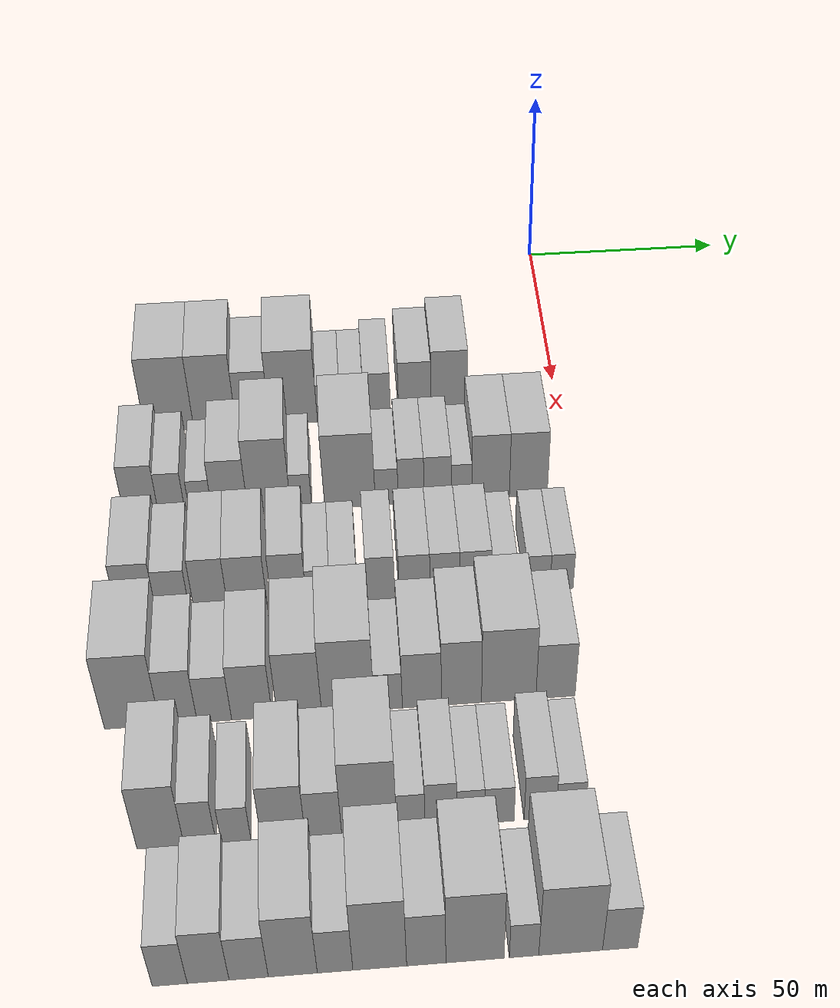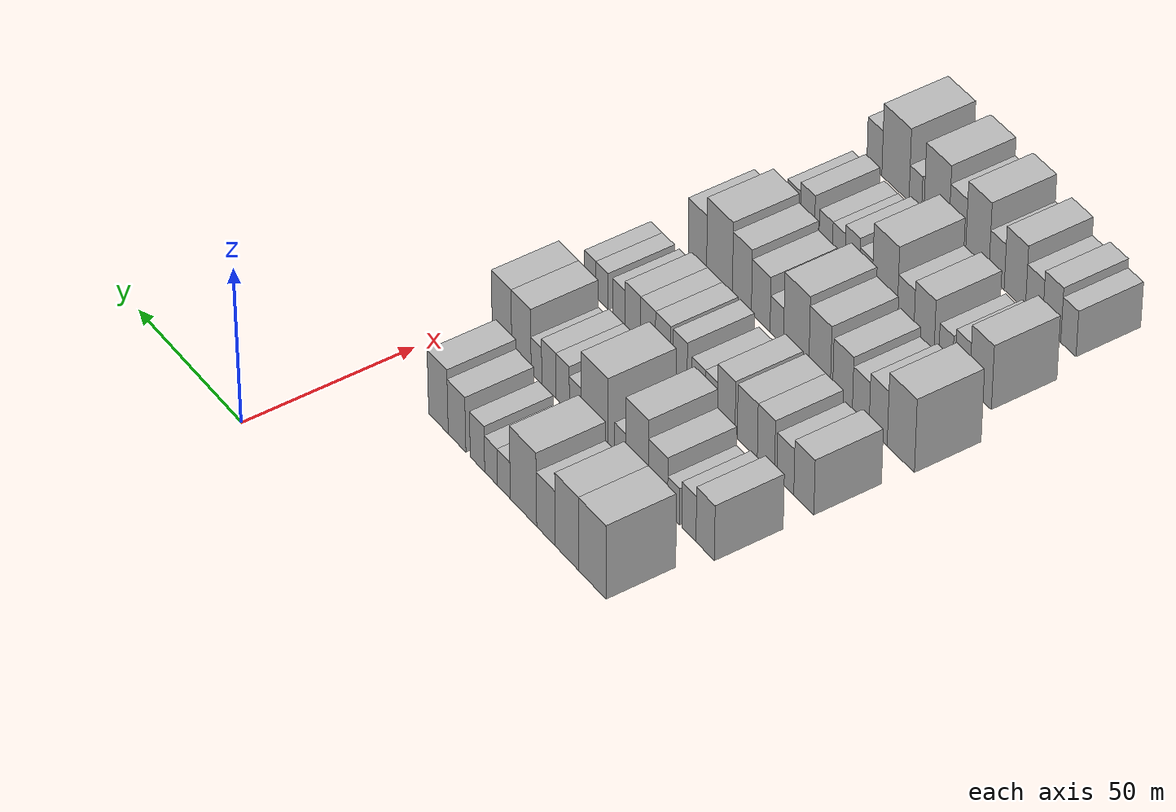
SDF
<sdf version="1.6">
 <world name="default">
  <model name="building_49">
   <static>1</static>
   <pose>50.0000 -95.6654 0 0.000000 0.000000 0.000000</pose>
   <link name="link">
    <pose>0 0 12.00 0 0 0</pose>
    <collision name="collision"><geometry><box><size>20.0000 11.8585 24.0000</size></box></geometry></collision>
    <visual name="visual">
     <cast_shadows>0</cast_shadows>
     <geometry><box><size>20.0000 11.8585 24.0000</size></box></geometry>
     <material>
      <script>
       <uri>model://HANNAS_wall/materials/scripts</uri>
       <uri>model://HANNAS_wall/materials/textures</uri>
       <name>vrc/HANNAS_wall</name>
      </script>
     </material>
    </visual>
   </link>
  </model>
  <model name="building_50">
   <static>1</static>
   <pose>50.0000 -84.5838 0 0.000000 0.000000 0.000000</pose>
   <link name="link">
    <pose>0 0 12.00 0 0 0</pose>
    <collision name="collision"><geometry><box><size>20.0000 10.3048 24.0000</size></box></geometry></collision>
    <visual name="visual">
     <cast_shadows>0</cast_shadows>
     <geometry><box><size>20.0000 10.3048 24.0000</size></box></geometry>
     <material>
      <script>
       <uri>model://HANNAS_wall/materials/scripts</uri>
       <uri>model://HANNAS_wall/materials/textures</uri>
       <name>vrc/HANNAS_wall</name>
      </script>
     </material>
    </visual>
   </link>
  </model>
  <model name="building_51">
   <static>1</static>
   <pose>50.0000 -75.3268 0 0.000000 0.000000 0.000000</pose>
   <link name="link">
    <pose>0 0 9.00 0 0 0</pose>
    <collision name="collision"><geometry><box><size>20.0000 8.2092 18.0000</size></box></geometry></collision>
    <visual name="visual">
     <cast_shadows>0</cast_shadows>
     <geometry><box><size>20.0000 8.2092 18.0000</size></box></geometry>
     <material>
      <script>
       <uri>model://HANNAS_wall/materials/scripts</uri>
       <uri>model://HANNAS_wall/materials/textures</uri>
       <name>vrc/HANNAS_wall</name>
      </script>
     </material>
    </visual>
   </link>
  </model>
  <model name="building_52">
   <static>1</static>
   <pose>50.0000 -65.3656 0 0.000000 0.000000 0.000000</pose>
   <link name="link">
    <pose>0 0 12.00 0 0 0</pose>
    <collision name="collision"><geometry><box><size>20.0000 11.7131 24.0000</size></box></geometry></collision>
    <visual name="visual">
     <cast_shadows>0</cast_shadows>
     <geometry><box><size>20.0000 11.7131 24.0000</size></box></geometry>
     <material>
      <script>
       <uri>model://HANNAS_wall/materials/scripts</uri>
       <uri>model://HANNAS_wall/materials/textures</uri>
       <name>vrc/HANNAS_wall</name>
      </script>
     </material>
    </visual>
   </link>
  </model>
  <model name="building_53">
   <static>1</static>
   <pose>50.0000 -56.6102 0 0.000000 0.000000 0.000000</pose>
   <link name="link">
    <pose>0 0 6.00 0 0 0</pose>
    <collision name="collision"><geometry><box><size>20.0000 5.7977 12.0000</size></box></geometry></collision>
    <visual name="visual">
     <cast_shadows>0</cast_shadows>
     <geometry><box><size>20.0000 5.7977 12.0000</size></box></geometry>
     <material>
      <script>
       <uri>model://HANNAS_wall/materials/scripts</uri>
       <uri>model://HANNAS_wall/materials/textures</uri>
       <name>vrc/HANNAS_wall</name>
      </script>
     </material>
    </visual>
   </link>
  </model>
  <model name="building_54">
   <static>1</static>
   <pose>50.0000 -50.8515 0 0.000000 0.000000 0.000000</pose>
   <link name="link">
    <pose>0 0 6.00 0 0 0</pose>
    <collision name="collision"><geometry><box><size>20.0000 5.7197 12.0000</size></box></geometry></collision>
    <visual name="visual">
     <cast_shadows>0</cast_shadows>
     <geometry><box><size>20.0000 5.7197 12.0000</size></box></geometry>
     <material>
      <script>
       <uri>model://HANNAS_wall/materials/scripts</uri>
       <uri>model://HANNAS_wall/materials/textures</uri>
       <name>vrc/HANNAS_wall</name>
      </script>
     </material>
    </visual>
   </link>
  </model>
  <model name="building_55">
   <static>1</static>
   <pose>50.0000 -44.7287 0 0.000000 0.000000 0.000000</pose>
   <link name="link">
    <pose>0 0 7.50 0 0 0</pose>
    <collision name="collision"><geometry><box><size>20.0000 6.5260 15.0000</size></box></geometry></collision>
    <visual name="visual">
     <cast_shadows>0</cast_shadows>
     <geometry><box><size>20.0000 6.5260 15.0000</size></box></geometry>
     <material>
      <script>
       <uri>model://HANNAS_wall/materials/scripts</uri>
       <uri>model://HANNAS_wall/materials/textures</uri>
       <name>vrc/HANNAS_wall</name>
      </script>
     </material>
    </visual>
   </link>
  </model>
  <model name="building_56">
   <static>1</static>
   <pose>50.0000 -35.4496 0 0.000000 0.000000 0.000000</pose>
   <link name="link">
    <pose>0 0 9.00 0 0 0</pose>
    <collision name="collision"><geometry><box><size>20.0000 8.0321 18.0000</size></box></geometry></collision>
    <visual name="visual">
     <cast_shadows>0</cast_shadows>
     <geometry><box><size>20.0000 8.0321 18.0000</size></box></geometry>
     <material>
      <script>
       <uri>model://HANNAS_wall/materials/scripts</uri>
       <uri>model://HANNAS_wall/materials/textures</uri>
       <name>vrc/HANNAS_wall</name>
      </script>
     </material>
    </visual>
   </link>
  </model>
  <model name="building_57">
   <static>1</static>
   <pose>50.0000 -26.9612 0 0.000000 0.000000 0.000000</pose>
   <link name="link">
    <pose>0 0 10.50 0 0 0</pose>
    <collision name="collision"><geometry><box><size>20.0000 8.9448 21.0000</size></box></geometry></collision>
    <visual name="visual">
     <cast_shadows>0</cast_shadows>
     <geometry><box><size>20.0000 8.9448 21.0000</size></box></geometry>
     <material>
      <script>
       <uri>model://HANNAS_wall/materials/scripts</uri>
       <uri>model://HANNAS_wall/materials/textures</uri>
       <name>vrc/HANNAS_wall</name>
      </script>
     </material>
    </visual>
   </link>
  </model>
  <model name="building_164">
   <static>1</static>
   <pose>79.0000 -100.8927 0 0.000000 0.000000 0.000000</pose>
   <link name="link">
    <pose>0 0 9.00 0 0 0</pose>
    <collision name="collision"><geometry><box><size>20.0000 7.8960 18.0000</size></box></geometry></collision>
    <visual name="visual">
     <cast_shadows>0</cast_shadows>
     <geometry><box><size>20.0000 7.8960 18.0000</size></box></geometry>
     <material>
      <script>
       <uri>model://HANNAS_wall/materials/scripts</uri>
       <uri>model://HANNAS_wall/materials/textures</uri>
       <name>vrc/HANNAS_wall</name>
      </script>
     </material>
    </visual>
   </link>
  </model>
  <model name="building_165">
   <static>1</static>
   <pose>79.0000 -93.8860 0 0.000000 0.000000 0.000000</pose>
   <link name="link">
    <pose>0 0 7.50 0 0 0</pose>
    <collision name="collision"><geometry><box><size>20.0000 6.1174 15.0000</size></box></geometry></collision>
    <visual name="visual">
     <cast_shadows>0</cast_shadows>
     <geometry><box><size>20.0000 6.1174 15.0000</size></box></geometry>
     <material>
      <script>
       <uri>model://HANNAS_wall/materials/scripts</uri>
       <uri>model://HANNAS_wall/materials/textures</uri>
       <name>vrc/HANNAS_wall</name>
      </script>
     </material>
    </visual>
   </link>
  </model>
  <model name="building_166">
   <static>1</static>
   <pose>79.0000 -87.2412 0 0.000000 0.000000 0.000000</pose>
   <link name="link">
    <pose>0 0 6.00 0 0 0</pose>
    <collision name="collision"><geometry><box><size>20.0000 5.1724 12.0000</size></box></geometry></collision>
    <visual name="visual">
     <cast_shadows>0</cast_shadows>
     <geometry><box><size>20.0000 5.1724 12.0000</size></box></geometry>
     <material>
      <script>
       <uri>model://HANNAS_wall/materials/scripts</uri>
       <uri>model://HANNAS_wall/materials/textures</uri>
       <name>vrc/HANNAS_wall</name>
      </script>
     </material>
    </visual>
   </link>
  </model>
  <model name="building_167">
   <static>1</static>
   <pose>79.0000 -80.5341 0 0.000000 0.000000 0.000000</pose>
   <link name="link">
    <pose>0 0 9.00 0 0 0</pose>
    <collision name="collision"><geometry><box><size>20.0000 8.2418 18.0000</size></box></geometry></collision>
    <visual name="visual">
     <cast_shadows>0</cast_shadows>
     <geometry><box><size>20.0000 8.2418 18.0000</size></box></geometry>
     <material>
      <script>
       <uri>model://HANNAS_wall/materials/scripts</uri>
       <uri>model://HANNAS_wall/materials/textures</uri>
       <name>vrc/HANNAS_wall</name>
      </script>
     </material>
    </visual>
   </link>
  </model>
  <model name="building_168">
   <static>1</static>
   <pose>79.0000 -71.4314 0 0.000000 0.000000 0.000000</pose>
   <link name="link">
    <pose>0 0 12.00 0 0 0</pose>
    <collision name="collision"><geometry><box><size>20.0000 9.9634 24.0000</size></box></geometry></collision>
    <visual name="visual">
     <cast_shadows>0</cast_shadows>
     <geometry><box><size>20.0000 9.9634 24.0000</size></box></geometry>
     <material>
      <script>
       <uri>model://HANNAS_wall/materials/scripts</uri>
       <uri>model://HANNAS_wall/materials/textures</uri>
       <name>vrc/HANNAS_wall</name>
      </script>
     </material>
    </visual>
   </link>
  </model>
  <model name="building_169">
   <static>1</static>
   <pose>79.0000 -63.9981 0 0.000000 0.000000 0.000000</pose>
   <link name="link">
    <pose>0 0 6.00 0 0 0</pose>
    <collision name="collision"><geometry><box><size>20.0000 4.9031 12.0000</size></box></geometry></collision>
    <visual name="visual">
     <cast_shadows>0</cast_shadows>
     <geometry><box><size>20.0000 4.9031 12.0000</size></box></geometry>
     <material>
      <script>
       <uri>model://HANNAS_wall/materials/scripts</uri>
       <uri>model://HANNAS_wall/materials/textures</uri>
       <name>vrc/HANNAS_wall</name>
      </script>
     </material>
    </visual>
   </link>
  </model>
  <model name="building_170">
   <static>1</static>
   <pose>79.0000 -52.6302 0 0.000000 0.000000 0.000000</pose>
   <link name="link">
    <pose>0 0 12.00 0 0 0</pose>
    <collision name="collision"><geometry><box><size>20.0000 11.8328 24.0000</size></box></geometry></collision>
    <visual name="visual">
     <cast_shadows>0</cast_shadows>
     <geometry><box><size>20.0000 11.8328 24.0000</size></box></geometry>
     <material>
      <script>
       <uri>model://HANNAS_wall/materials/scripts</uri>
       <uri>model://HANNAS_wall/materials/textures</uri>
       <name>vrc/HANNAS_wall</name>
      </script>
     </material>
    </visual>
   </link>
  </model>
  <model name="building_171">
   <static>1</static>
   <pose>79.0000 -44.0186 0 0.000000 0.000000 0.000000</pose>
   <link name="link">
    <pose>0 0 6.00 0 0 0</pose>
    <collision name="collision"><geometry><box><size>20.0000 5.3902 12.0000</size></box></geometry></collision>
    <visual name="visual">
     <cast_shadows>0</cast_shadows>
     <geometry><box><size>20.0000 5.3902 12.0000</size></box></geometry>
     <material>
      <script>
       <uri>model://HANNAS_wall/materials/scripts</uri>
       <uri>model://HANNAS_wall/materials/textures</uri>
       <name>vrc/HANNAS_wall</name>
      </script>
     </material>
    </visual>
   </link>
  </model>
  <model name="building_172">
   <static>1</static>
   <pose>79.0000 -38.2879 0 0.000000 0.000000 0.000000</pose>
   <link name="link">
    <pose>0 0 7.50 0 0 0</pose>
    <collision name="collision"><geometry><box><size>20.0000 6.0713 15.0000</size></box></geometry></collision>
    <visual name="visual">
     <cast_shadows>0</cast_shadows>
     <geometry><box><size>20.0000 6.0713 15.0000</size></box></geometry>
     <material>
      <script>
       <uri>model://HANNAS_wall/materials/scripts</uri>
       <uri>model://HANNAS_wall/materials/textures</uri>
       <name>vrc/HANNAS_wall</name>
      </script>
     </material>
    </visual>
   </link>
  </model>
  <model name="building_173">
   <static>1</static>
   <pose>79.0000 -32.0637 0 0.000000 0.000000 0.000000</pose>
   <link name="link">
    <pose>0 0 7.50 0 0 0</pose>
    <collision name="collision"><geometry><box><size>20.0000 6.3772 15.0000</size></box></geometry></collision>
    <visual name="visual">
     <cast_shadows>0</cast_shadows>
     <geometry><box><size>20.0000 6.3772 15.0000</size></box></geometry>
     <material>
      <script>
       <uri>model://HANNAS_wall/materials/scripts</uri>
       <uri>model://HANNAS_wall/materials/textures</uri>
       <name>vrc/HANNAS_wall</name>
      </script>
     </material>
    </visual>
   </link>
  </model>
  <model name="building_174">
   <static>1</static>
   <pose>79.0000 -26.4556 0 0.000000 0.000000 0.000000</pose>
   <link name="link">
    <pose>0 0 6.00 0 0 0</pose>
    <collision name="collision"><geometry><box><size>20.0000 4.8388 12.0000</size></box></geometry></collision>
    <visual name="visual">
     <cast_shadows>0</cast_shadows>
     <geometry><box><size>20.0000 4.8388 12.0000</size></box></geometry>
     <material>
      <script>
       <uri>model://HANNAS_wall/materials/scripts</uri>
       <uri>model://HANNAS_wall/materials/textures</uri>
       <name>vrc/HANNAS_wall</name>
      </script>
     </material>
    </visual>
   </link>
  </model>
  <model name="building_175">
   <static>1</static>
   <pose>79.0000 -19.6190 0 0.000000 0.000000 0.000000</pose>
   <link name="link">
    <pose>0 0 10.50 0 0 0</pose>
    <collision name="collision"><geometry><box><size>20.0000 8.8344 21.0000</size></box></geometry></collision>
    <visual name="visual">
     <cast_shadows>0</cast_shadows>
     <geometry><box><size>20.0000 8.8344 21.0000</size></box></geometry>
     <material>
      <script>
       <uri>model://HANNAS_wall/materials/scripts</uri>
       <uri>model://HANNAS_wall/materials/textures</uri>
       <name>vrc/HANNAS_wall</name>
      </script>
     </material>
    </visual>
   </link>
  </model>
  <model name="building_176">
   <static>1</static>
   <pose>79.0000 -10.7137 0 0.000000 0.000000 0.000000</pose>
   <link name="link">
    <pose>0 0 10.50 0 0 0</pose>
    <collision name="collision"><geometry><box><size>20.0000 8.9762 21.0000</size></box></geometry></collision>
    <visual name="visual">
     <cast_shadows>0</cast_shadows>
     <geometry><box><size>20.0000 8.9762 21.0000</size></box></geometry>
     <material>
      <script>
       <uri>model://HANNAS_wall/materials/scripts</uri>
       <uri>model://HANNAS_wall/materials/textures</uri>
       <name>vrc/HANNAS_wall</name>
      </script>
     </material>
    </visual>
   </link>
  </model>
  <model name="building_285">
   <static>1</static>
   <pose>108.0000 -100.5775 0 0.000000 0.000000 0.000000</pose>
   <link name="link">
    <pose>0 0 9.00 0 0 0</pose>
    <collision name="collision"><geometry><box><size>20.0000 8.5226 18.0000</size></box></geometry></collision>
    <visual name="visual">
     <cast_shadows>0</cast_shadows>
     <geometry><box><size>20.0000 8.5226 18.0000</size></box></geometry>
     <material>
      <script>
       <uri>model://HANNAS_wall/materials/scripts</uri>
       <uri>model://HANNAS_wall/materials/textures</uri>
       <name>vrc/HANNAS_wall</name>
      </script>
     </material>
    </visual>
   </link>
  </model>
  <model name="building_286">
   <static>1</static>
   <pose>108.0000 -92.6948 0 0.000000 0.000000 0.000000</pose>
   <link name="link">
    <pose>0 0 7.50 0 0 0</pose>
    <collision name="collision"><geometry><box><size>20.0000 7.2428 15.0000</size></box></geometry></collision>
    <visual name="visual">
     <cast_shadows>0</cast_shadows>
     <geometry><box><size>20.0000 7.2428 15.0000</size></box></geometry>
     <material>
      <script>
       <uri>model://HANNAS_wall/materials/scripts</uri>
       <uri>model://HANNAS_wall/materials/textures</uri>
       <name>vrc/HANNAS_wall</name>
      </script>
     </material>
    </visual>
   </link>
  </model>
  <model name="building_287">
   <static>1</static>
   <pose>108.0000 -84.3746 0 0.000000 0.000000 0.000000</pose>
   <link name="link">
    <pose>0 0 9.00 0 0 0</pose>
    <collision name="collision"><geometry><box><size>20.0000 7.3976 18.0000</size></box></geometry></collision>
    <visual name="visual">
     <cast_shadows>0</cast_shadows>
     <geometry><box><size>20.0000 7.3976 18.0000</size></box></geometry>
     <material>
      <script>
       <uri>model://HANNAS_wall/materials/scripts</uri>
       <uri>model://HANNAS_wall/materials/textures</uri>
       <name>vrc/HANNAS_wall</name>
      </script>
     </material>
    </visual>
   </link>
  </model>
  <model name="building_288">
   <static>1</static>
   <pose>108.0000 -76.3497 0 0.000000 0.000000 0.000000</pose>
   <link name="link">
    <pose>0 0 9.00 0 0 0</pose>
    <collision name="collision"><geometry><box><size>20.0000 8.6523 18.0000</size></box></geometry></collision>
    <visual name="visual">
     <cast_shadows>0</cast_shadows>
     <geometry><box><size>20.0000 8.6523 18.0000</size></box></geometry>
     <material>
      <script>
       <uri>model://HANNAS_wall/materials/scripts</uri>
       <uri>model://HANNAS_wall/materials/textures</uri>
       <name>vrc/HANNAS_wall</name>
      </script>
     </material>
    </visual>
   </link>
  </model>
  <model name="building_289">
   <static>1</static>
   <pose>108.0000 -67.1821 0 0.000000 0.000000 0.000000</pose>
   <link name="link">
    <pose>0 0 9.00 0 0 0</pose>
    <collision name="collision"><geometry><box><size>20.0000 7.6829 18.0000</size></box></geometry></collision>
    <visual name="visual">
     <cast_shadows>0</cast_shadows>
     <geometry><box><size>20.0000 7.6829 18.0000</size></box></geometry>
     <material>
      <script>
       <uri>model://HANNAS_wall/materials/scripts</uri>
       <uri>model://HANNAS_wall/materials/textures</uri>
       <name>vrc/HANNAS_wall</name>
      </script>
     </material>
    </visual>
   </link>
  </model>
  <model name="building_290">
   <static>1</static>
   <pose>108.0000 -60.6601 0 0.000000 0.000000 0.000000</pose>
   <link name="link">
    <pose>0 0 6.00 0 0 0</pose>
    <collision name="collision"><geometry><box><size>20.0000 5.3612 12.0000</size></box></geometry></collision>
    <visual name="visual">
     <cast_shadows>0</cast_shadows>
     <geometry><box><size>20.0000 5.3612 12.0000</size></box></geometry>
     <material>
      <script>
       <uri>model://HANNAS_wall/materials/scripts</uri>
       <uri>model://HANNAS_wall/materials/textures</uri>
       <name>vrc/HANNAS_wall</name>
      </script>
     </material>
    </visual>
   </link>
  </model>
  <model name="building_291">
   <static>1</static>
   <pose>108.0000 -55.0084 0 0.000000 0.000000 0.000000</pose>
   <link name="link">
    <pose>0 0 6.00 0 0 0</pose>
    <collision name="collision"><geometry><box><size>20.0000 5.9421 12.0000</size></box></geometry></collision>
    <visual name="visual">
     <cast_shadows>0</cast_shadows>
     <geometry><box><size>20.0000 5.9421 12.0000</size></box></geometry>
     <material>
      <script>
       <uri>model://HANNAS_wall/materials/scripts</uri>
       <uri>model://HANNAS_wall/materials/textures</uri>
       <name>vrc/HANNAS_wall</name>
      </script>
     </material>
    </visual>
   </link>
  </model>
  <model name="building_292">
   <static>1</static>
   <pose>108.0000 -46.9216 0 0.000000 0.000000 0.000000</pose>
   <link name="link">
    <pose>0 0 7.50 0 0 0</pose>
    <collision name="collision"><geometry><box><size>20.0000 6.2316 15.0000</size></box></geometry></collision>
    <visual name="visual">
     <cast_shadows>0</cast_shadows>
     <geometry><box><size>20.0000 6.2316 15.0000</size></box></geometry>
     <material>
      <script>
       <uri>model://HANNAS_wall/materials/scripts</uri>
       <uri>model://HANNAS_wall/materials/textures</uri>
       <name>vrc/HANNAS_wall</name>
      </script>
     </material>
    </visual>
   </link>
  </model>
  <model name="building_293">
   <static>1</static>
   <pose>108.0000 -39.3901 0 0.000000 0.000000 0.000000</pose>
   <link name="link">
    <pose>0 0 7.50 0 0 0</pose>
    <collision name="collision"><geometry><box><size>20.0000 6.8315 15.0000</size></box></geometry></collision>
    <visual name="visual">
     <cast_shadows>0</cast_shadows>
     <geometry><box><size>20.0000 6.8315 15.0000</size></box></geometry>
     <material>
      <script>
       <uri>model://HANNAS_wall/materials/scripts</uri>
       <uri>model://HANNAS_wall/materials/textures</uri>
       <name>vrc/HANNAS_wall</name>
      </script>
     </material>
    </visual>
   </link>
  </model>
  <model name="building_294">
   <static>1</static>
   <pose>108.0000 -32.6646 0 0.000000 0.000000 0.000000</pose>
   <link name="link">
    <pose>0 0 7.50 0 0 0</pose>
    <collision name="collision"><geometry><box><size>20.0000 6.6195 15.0000</size></box></geometry></collision>
    <visual name="visual">
     <cast_shadows>0</cast_shadows>
     <geometry><box><size>20.0000 6.6195 15.0000</size></box></geometry>
     <material>
      <script>
       <uri>model://HANNAS_wall/materials/scripts</uri>
       <uri>model://HANNAS_wall/materials/textures</uri>
       <name>vrc/HANNAS_wall</name>
      </script>
     </material>
    </visual>
   </link>
  </model>
  <model name="building_295">
   <static>1</static>
   <pose>108.0000 -25.8540 0 0.000000 0.000000 0.000000</pose>
   <link name="link">
    <pose>0 0 7.50 0 0 0</pose>
    <collision name="collision"><geometry><box><size>20.0000 7.0016 15.0000</size></box></geometry></collision>
    <visual name="visual">
     <cast_shadows>0</cast_shadows>
     <geometry><box><size>20.0000 7.0016 15.0000</size></box></geometry>
     <material>
      <script>
       <uri>model://HANNAS_wall/materials/scripts</uri>
       <uri>model://HANNAS_wall/materials/textures</uri>
       <name>vrc/HANNAS_wall</name>
      </script>
     </material>
    </visual>
   </link>
  </model>
  <model name="building_296">
   <static>1</static>
   <pose>108.0000 -19.5344 0 0.000000 0.000000 0.000000</pose>
   <link name="link">
    <pose>0 0 6.00 0 0 0</pose>
    <collision name="collision"><geometry><box><size>20.0000 5.6376 12.0000</size></box></geometry></collision>
    <visual name="visual">
     <cast_shadows>0</cast_shadows>
     <geometry><box><size>20.0000 5.6376 12.0000</size></box></geometry>
     <material>
      <script>
       <uri>model://HANNAS_wall/materials/scripts</uri>
       <uri>model://HANNAS_wall/materials/textures</uri>
       <name>vrc/HANNAS_wall</name>
      </script>
     </material>
    </visual>
   </link>
  </model>
  <model name="building_297">
   <static>1</static>
   <pose>108.0000 -11.9482 0 0.000000 0.000000 0.000000</pose>
   <link name="link">
    <pose>0 0 6.00 0 0 0</pose>
    <collision name="collision"><geometry><box><size>20.0000 5.5349 12.0000</size></box></geometry></collision>
    <visual name="visual">
     <cast_shadows>0</cast_shadows>
     <geometry><box><size>20.0000 5.5349 12.0000</size></box></geometry>
     <material>
      <script>
       <uri>model://HANNAS_wall/materials/scripts</uri>
       <uri>model://HANNAS_wall/materials/textures</uri>
       <name>vrc/HANNAS_wall</name>
      </script>
     </material>
    </visual>
   </link>
  </model>
  <model name="building_298">
   <static>1</static>
   <pose>108.0000 -6.5857 0 0.000000 0.000000 0.000000</pose>
   <link name="link">
    <pose>0 0 6.00 0 0 0</pose>
    <collision name="collision"><geometry><box><size>20.0000 5.1899 12.0000</size></box></geometry></collision>
    <visual name="visual">
     <cast_shadows>0</cast_shadows>
     <geometry><box><size>20.0000 5.1899 12.0000</size></box></geometry>
     <material>
      <script>
       <uri>model://HANNAS_wall/materials/scripts</uri>
       <uri>model://HANNAS_wall/materials/textures</uri>
       <name>vrc/HANNAS_wall</name>
      </script>
     </material>
    </visual>
   </link>
  </model>
  <model name="building_401">
   <static>1</static>
   <pose>137.0000 -100.2465 0 0.000000 0.000000 0.000000</pose>
   <link name="link">
    <pose>0 0 12.00 0 0 0</pose>
    <collision name="collision"><geometry><box><size>20.0000 11.4890 24.0000</size></box></geometry></collision>
    <visual name="visual">
     <cast_shadows>0</cast_shadows>
     <geometry><box><size>20.0000 11.4890 24.0000</size></box></geometry>
     <material>
      <script>
       <uri>model://HANNAS_wall/materials/scripts</uri>
       <uri>model://HANNAS_wall/materials/textures</uri>
       <name>vrc/HANNAS_wall</name>
      </script>
     </material>
    </visual>
   </link>
  </model>
  <model name="building_402">
   <static>1</static>
   <pose>137.0000 -90.6648 0 0.000000 0.000000 0.000000</pose>
   <link name="link">
    <pose>0 0 9.00 0 0 0</pose>
    <collision name="collision"><geometry><box><size>20.0000 7.6744 18.0000</size></box></geometry></collision>
    <visual name="visual">
     <cast_shadows>0</cast_shadows>
     <geometry><box><size>20.0000 7.6744 18.0000</size></box></geometry>
     <material>
      <script>
       <uri>model://HANNAS_wall/materials/scripts</uri>
       <uri>model://HANNAS_wall/materials/textures</uri>
       <name>vrc/HANNAS_wall</name>
      </script>
     </material>
    </visual>
   </link>
  </model>
  <model name="building_403">
   <static>1</static>
   <pose>137.0000 -83.2511 0 0.000000 0.000000 0.000000</pose>
   <link name="link">
    <pose>0 0 7.50 0 0 0</pose>
    <collision name="collision"><geometry><box><size>20.0000 7.1529 15.0000</size></box></geometry></collision>
    <visual name="visual">
     <cast_shadows>0</cast_shadows>
     <geometry><box><size>20.0000 7.1529 15.0000</size></box></geometry>
     <material>
      <script>
       <uri>model://HANNAS_wall/materials/scripts</uri>
       <uri>model://HANNAS_wall/materials/textures</uri>
       <name>vrc/HANNAS_wall</name>
      </script>
     </material>
    </visual>
   </link>
  </model>
  <model name="building_404">
   <static>1</static>
   <pose>137.0000 -75.4385 0 0.000000 0.000000 0.000000</pose>
   <link name="link">
    <pose>0 0 9.00 0 0 0</pose>
    <collision name="collision"><geometry><box><size>20.0000 8.4724 18.0000</size></box></geometry></collision>
    <visual name="visual">
     <cast_shadows>0</cast_shadows>
     <geometry><box><size>20.0000 8.4724 18.0000</size></box></geometry>
     <material>
      <script>
       <uri>model://HANNAS_wall/materials/scripts</uri>
       <uri>model://HANNAS_wall/materials/textures</uri>
       <name>vrc/HANNAS_wall</name>
      </script>
     </material>
    </visual>
   </link>
  </model>
  <model name="building_405">
   <static>1</static>
   <pose>137.0000 -65.5525 0 0.000000 0.000000 0.000000</pose>
   <link name="link">
    <pose>0 0 10.50 0 0 0</pose>
    <collision name="collision"><geometry><box><size>20.0000 9.2996 21.0000</size></box></geometry></collision>
    <visual name="visual">
     <cast_shadows>0</cast_shadows>
     <geometry><box><size>20.0000 9.2996 21.0000</size></box></geometry>
     <material>
      <script>
       <uri>model://HANNAS_wall/materials/scripts</uri>
       <uri>model://HANNAS_wall/materials/textures</uri>
       <name>vrc/HANNAS_wall</name>
      </script>
     </material>
    </visual>
   </link>
  </model>
  <model name="building_406">
   <static>1</static>
   <pose>137.0000 -55.3952 0 0.000000 0.000000 0.000000</pose>
   <link name="link">
    <pose>0 0 12.00 0 0 0</pose>
    <collision name="collision"><geometry><box><size>20.0000 11.0149 24.0000</size></box></geometry></collision>
    <visual name="visual">
     <cast_shadows>0</cast_shadows>
     <geometry><box><size>20.0000 11.0149 24.0000</size></box></geometry>
     <material>
      <script>
       <uri>model://HANNAS_wall/materials/scripts</uri>
       <uri>model://HANNAS_wall/materials/textures</uri>
       <name>vrc/HANNAS_wall</name>
      </script>
     </material>
    </visual>
   </link>
  </model>
  <model name="building_407">
   <static>1</static>
   <pose>137.0000 -46.9393 0 0.000000 0.000000 0.000000</pose>
   <link name="link">
    <pose>0 0 6.00 0 0 0</pose>
    <collision name="collision"><geometry><box><size>20.0000 5.8969 12.0000</size></box></geometry></collision>
    <visual name="visual">
     <cast_shadows>0</cast_shadows>
     <geometry><box><size>20.0000 5.8969 12.0000</size></box></geometry>
     <material>
      <script>
       <uri>model://HANNAS_wall/materials/scripts</uri>
       <uri>model://HANNAS_wall/materials/textures</uri>
       <name>vrc/HANNAS_wall</name>
      </script>
     </material>
    </visual>
   </link>
  </model>
  <model name="building_408">
   <static>1</static>
   <pose>137.0000 -39.8700 0 0.000000 0.000000 0.000000</pose>
   <link name="link">
    <pose>0 0 9.00 0 0 0</pose>
    <collision name="collision"><geometry><box><size>20.0000 8.2418 18.0000</size></box></geometry></collision>
    <visual name="visual">
     <cast_shadows>0</cast_shadows>
     <geometry><box><size>20.0000 8.2418 18.0000</size></box></geometry>
     <material>
      <script>
       <uri>model://HANNAS_wall/materials/scripts</uri>
       <uri>model://HANNAS_wall/materials/textures</uri>
       <name>vrc/HANNAS_wall</name>
      </script>
     </material>
    </visual>
   </link>
  </model>
  <model name="building_409">
   <static>1</static>
   <pose>137.0000 -31.5359 0 0.000000 0.000000 0.000000</pose>
   <link name="link">
    <pose>0 0 10.50 0 0 0</pose>
    <collision name="collision"><geometry><box><size>20.0000 8.4264 21.0000</size></box></geometry></collision>
    <visual name="visual">
     <cast_shadows>0</cast_shadows>
     <geometry><box><size>20.0000 8.4264 21.0000</size></box></geometry>
     <material>
      <script>
       <uri>model://HANNAS_wall/materials/scripts</uri>
       <uri>model://HANNAS_wall/materials/textures</uri>
       <name>vrc/HANNAS_wall</name>
      </script>
     </material>
    </visual>
   </link>
  </model>
  <model name="building_410">
   <static>1</static>
   <pose>137.0000 -21.5633 0 0.000000 0.000000 0.000000</pose>
   <link name="link">
    <pose>0 0 12.00 0 0 0</pose>
    <collision name="collision"><geometry><box><size>20.0000 11.5189 24.0000</size></box></geometry></collision>
    <visual name="visual">
     <cast_shadows>0</cast_shadows>
     <geometry><box><size>20.0000 11.5189 24.0000</size></box></geometry>
     <material>
      <script>
       <uri>model://HANNAS_wall/materials/scripts</uri>
       <uri>model://HANNAS_wall/materials/textures</uri>
       <name>vrc/HANNAS_wall</name>
      </script>
     </material>
    </visual>
   </link>
  </model>
  <model name="building_411">
   <static>1</static>
   <pose>137.0000 -11.6373 0 0.000000 0.000000 0.000000</pose>
   <link name="link">
    <pose>0 0 9.00 0 0 0</pose>
    <collision name="collision"><geometry><box><size>20.0000 8.3332 18.0000</size></box></geometry></collision>
    <visual name="visual">
     <cast_shadows>0</cast_shadows>
     <geometry><box><size>20.0000 8.3332 18.0000</size></box></geometry>
     <material>
      <script>
       <uri>model://HANNAS_wall/materials/scripts</uri>
       <uri>model://HANNAS_wall/materials/textures</uri>
       <name>vrc/HANNAS_wall</name>
      </script>
     </material>
    </visual>
   </link>
  </model>
  <model name="building_517">
   <static>1</static>
   <pose>166.0000 -93.2825 0 0.000000 0.000000 0.000000</pose>
   <link name="link">
    <pose>0 0 10.50 0 0 0</pose>
    <collision name="collision"><geometry><box><size>20.0000 9.1775 21.0000</size></box></geometry></collision>
    <visual name="visual">
     <cast_shadows>0</cast_shadows>
     <geometry><box><size>20.0000 9.1775 21.0000</size></box></geometry>
     <material>
      <script>
       <uri>model://HANNAS_wall/materials/scripts</uri>
       <uri>model://HANNAS_wall/materials/textures</uri>
       <name>vrc/HANNAS_wall</name>
      </script>
     </material>
    </visual>
   </link>
  </model>
  <model name="building_518">
   <static>1</static>
   <pose>166.0000 -85.5630 0 0.000000 0.000000 0.000000</pose>
   <link name="link">
    <pose>0 0 7.50 0 0 0</pose>
    <collision name="collision"><geometry><box><size>20.0000 6.2615 15.0000</size></box></geometry></collision>
    <visual name="visual">
     <cast_shadows>0</cast_shadows>
     <geometry><box><size>20.0000 6.2615 15.0000</size></box></geometry>
     <material>
      <script>
       <uri>model://HANNAS_wall/materials/scripts</uri>
       <uri>model://HANNAS_wall/materials/textures</uri>
       <name>vrc/HANNAS_wall</name>
      </script>
     </material>
    </visual>
   </link>
  </model>
  <model name="building_519">
   <static>1</static>
   <pose>166.0000 -78.5292 0 0.000000 0.000000 0.000000</pose>
   <link name="link">
    <pose>0 0 6.00 0 0 0</pose>
    <collision name="collision"><geometry><box><size>20.0000 5.8061 12.0000</size></box></geometry></collision>
    <visual name="visual">
     <cast_shadows>0</cast_shadows>
     <geometry><box><size>20.0000 5.8061 12.0000</size></box></geometry>
     <material>
      <script>
       <uri>model://HANNAS_wall/materials/scripts</uri>
       <uri>model://HANNAS_wall/materials/textures</uri>
       <name>vrc/HANNAS_wall</name>
      </script>
     </material>
    </visual>
   </link>
  </model>
  <model name="building_520">
   <static>1</static>
   <pose>166.0000 -69.2948 0 0.000000 0.000000 0.000000</pose>
   <link name="link">
    <pose>0 0 9.00 0 0 0</pose>
    <collision name="collision"><geometry><box><size>20.0000 8.6627 18.0000</size></box></geometry></collision>
    <visual name="visual">
     <cast_shadows>0</cast_shadows>
     <geometry><box><size>20.0000 8.6627 18.0000</size></box></geometry>
     <material>
      <script>
       <uri>model://HANNAS_wall/materials/scripts</uri>
       <uri>model://HANNAS_wall/materials/textures</uri>
       <name>vrc/HANNAS_wall</name>
      </script>
     </material>
    </visual>
   </link>
  </model>
  <model name="building_521">
   <static>1</static>
   <pose>166.0000 -61.3845 0 0.000000 0.000000 0.000000</pose>
   <link name="link">
    <pose>0 0 7.50 0 0 0</pose>
    <collision name="collision"><geometry><box><size>20.0000 7.1581 15.0000</size></box></geometry></collision>
    <visual name="visual">
     <cast_shadows>0</cast_shadows>
     <geometry><box><size>20.0000 7.1581 15.0000</size></box></geometry>
     <material>
      <script>
       <uri>model://HANNAS_wall/materials/scripts</uri>
       <uri>model://HANNAS_wall/materials/textures</uri>
       <name>vrc/HANNAS_wall</name>
      </script>
     </material>
    </visual>
   </link>
  </model>
  <model name="building_522">
   <static>1</static>
   <pose>166.0000 -52.3577 0 0.000000 0.000000 0.000000</pose>
   <link name="link">
    <pose>0 0 12.00 0 0 0</pose>
    <collision name="collision"><geometry><box><size>20.0000 10.8954 24.0000</size></box></geometry></collision>
    <visual name="visual">
     <cast_shadows>0</cast_shadows>
     <geometry><box><size>20.0000 10.8954 24.0000</size></box></geometry>
     <material>
      <script>
       <uri>model://HANNAS_wall/materials/scripts</uri>
       <uri>model://HANNAS_wall/materials/textures</uri>
       <name>vrc/HANNAS_wall</name>
      </script>
     </material>
    </visual>
   </link>
  </model>
  <model name="building_523">
   <static>1</static>
   <pose>166.0000 -44.1077 0 0.000000 0.000000 0.000000</pose>
   <link name="link">
    <pose>0 0 6.00 0 0 0</pose>
    <collision name="collision"><geometry><box><size>20.0000 5.6047 12.0000</size></box></geometry></collision>
    <visual name="visual">
     <cast_shadows>0</cast_shadows>
     <geometry><box><size>20.0000 5.6047 12.0000</size></box></geometry>
     <material>
      <script>
       <uri>model://HANNAS_wall/materials/scripts</uri>
       <uri>model://HANNAS_wall/materials/textures</uri>
       <name>vrc/HANNAS_wall</name>
      </script>
     </material>
    </visual>
   </link>
  </model>
  <model name="building_524">
   <static>1</static>
   <pose>166.0000 -38.1775 0 0.000000 0.000000 0.000000</pose>
   <link name="link">
    <pose>0 0 7.50 0 0 0</pose>
    <collision name="collision"><geometry><box><size>20.0000 6.2556 15.0000</size></box></geometry></collision>
    <visual name="visual">
     <cast_shadows>0</cast_shadows>
     <geometry><box><size>20.0000 6.2556 15.0000</size></box></geometry>
     <material>
      <script>
       <uri>model://HANNAS_wall/materials/scripts</uri>
       <uri>model://HANNAS_wall/materials/textures</uri>
       <name>vrc/HANNAS_wall</name>
      </script>
     </material>
    </visual>
   </link>
  </model>
  <model name="building_525">
   <static>1</static>
   <pose>166.0000 -32.2824 0 0.000000 0.000000 0.000000</pose>
   <link name="link">
    <pose>0 0 6.00 0 0 0</pose>
    <collision name="collision"><geometry><box><size>20.0000 5.5348 12.0000</size></box></geometry></collision>
    <visual name="visual">
     <cast_shadows>0</cast_shadows>
     <geometry><box><size>20.0000 5.5348 12.0000</size></box></geometry>
     <material>
      <script>
       <uri>model://HANNAS_wall/materials/scripts</uri>
       <uri>model://HANNAS_wall/materials/textures</uri>
       <name>vrc/HANNAS_wall</name>
      </script>
     </material>
    </visual>
   </link>
  </model>
  <model name="building_526">
   <static>1</static>
   <pose>166.0000 -26.5573 0 0.000000 0.000000 0.000000</pose>
   <link name="link">
    <pose>0 0 6.00 0 0 0</pose>
    <collision name="collision"><geometry><box><size>20.0000 5.9154 12.0000</size></box></geometry></collision>
    <visual name="visual">
     <cast_shadows>0</cast_shadows>
     <geometry><box><size>20.0000 5.9154 12.0000</size></box></geometry>
     <material>
      <script>
       <uri>model://HANNAS_wall/materials/scripts</uri>
       <uri>model://HANNAS_wall/materials/textures</uri>
       <name>vrc/HANNAS_wall</name>
      </script>
     </material>
    </visual>
   </link>
  </model>
  <model name="building_527">
   <static>1</static>
   <pose>166.0000 -18.4351 0 0.000000 0.000000 0.000000</pose>
   <link name="link">
    <pose>0 0 7.50 0 0 0</pose>
    <collision name="collision"><geometry><box><size>20.0000 6.3290 15.0000</size></box></geometry></collision>
    <visual name="visual">
     <cast_shadows>0</cast_shadows>
     <geometry><box><size>20.0000 6.3290 15.0000</size></box></geometry>
     <material>
      <script>
       <uri>model://HANNAS_wall/materials/scripts</uri>
       <uri>model://HANNAS_wall/materials/textures</uri>
       <name>vrc/HANNAS_wall</name>
      </script>
     </material>
    </visual>
   </link>
  </model>
  <model name="building_528">
   <static>1</static>
   <pose>166.0000 -12.3511 0 0.000000 0.000000 0.000000</pose>
   <link name="link">
    <pose>0 0 6.00 0 0 0</pose>
    <collision name="collision"><geometry><box><size>20.0000 5.8389 12.0000</size></box></geometry></collision>
    <visual name="visual">
     <cast_shadows>0</cast_shadows>
     <geometry><box><size>20.0000 5.8389 12.0000</size></box></geometry>
     <material>
      <script>
       <uri>model://HANNAS_wall/materials/scripts</uri>
       <uri>model://HANNAS_wall/materials/textures</uri>
       <name>vrc/HANNAS_wall</name>
      </script>
     </material>
    </visual>
   </link>
  </model>
  <model name="building_630">
   <static>1</static>
   <pose>195.0000 -90.4744 0 0.000000 0.000000 0.000000</pose>
   <link name="link">
    <pose>0 0 7.50 0 0 0</pose>
    <collision name="collision"><geometry><box><size>20.0000 6.4129 15.0000</size></box></geometry></collision>
    <visual name="visual">
     <cast_shadows>0</cast_shadows>
     <geometry><box><size>20.0000 6.4129 15.0000</size></box></geometry>
     <material>
      <script>
       <uri>model://HANNAS_wall/materials/scripts</uri>
       <uri>model://HANNAS_wall/materials/textures</uri>
       <name>vrc/HANNAS_wall</name>
      </script>
     </material>
    </visual>
   </link>
  </model>
  <model name="building_631">
   <static>1</static>
   <pose>195.0000 -83.4363 0 0.000000 0.000000 0.000000</pose>
   <link name="link">
    <pose>0 0 9.00 0 0 0</pose>
    <collision name="collision"><geometry><box><size>20.0000 7.6633 18.0000</size></box></geometry></collision>
    <visual name="visual">
     <cast_shadows>0</cast_shadows>
     <geometry><box><size>20.0000 7.6633 18.0000</size></box></geometry>
     <material>
      <script>
       <uri>model://HANNAS_wall/materials/scripts</uri>
       <uri>model://HANNAS_wall/materials/textures</uri>
       <name>vrc/HANNAS_wall</name>
      </script>
     </material>
    </visual>
   </link>
  </model>
  <model name="building_632">
   <static>1</static>
   <pose>195.0000 -75.9955 0 0.000000 0.000000 0.000000</pose>
   <link name="link">
    <pose>0 0 7.50 0 0 0</pose>
    <collision name="collision"><geometry><box><size>20.0000 7.2184 15.0000</size></box></geometry></collision>
    <visual name="visual">
     <cast_shadows>0</cast_shadows>
     <geometry><box><size>20.0000 7.2184 15.0000</size></box></geometry>
     <material>
      <script>
       <uri>model://HANNAS_wall/materials/scripts</uri>
       <uri>model://HANNAS_wall/materials/textures</uri>
       <name>vrc/HANNAS_wall</name>
      </script>
     </material>
    </visual>
   </link>
  </model>
  <model name="building_633">
   <static>1</static>
   <pose>195.0000 -67.8691 0 0.000000 0.000000 0.000000</pose>
   <link name="link">
    <pose>0 0 10.50 0 0 0</pose>
    <collision name="collision"><geometry><box><size>20.0000 9.0343 21.0000</size></box></geometry></collision>
    <visual name="visual">
     <cast_shadows>0</cast_shadows>
     <geometry><box><size>20.0000 9.0343 21.0000</size></box></geometry>
     <material>
      <script>
       <uri>model://HANNAS_wall/materials/scripts</uri>
       <uri>model://HANNAS_wall/materials/textures</uri>
       <name>vrc/HANNAS_wall</name>
      </script>
     </material>
    </visual>
   </link>
  </model>
  <model name="building_634">
   <static>1</static>
   <pose>195.0000 -60.0723 0 0.000000 0.000000 0.000000</pose>
   <link name="link">
    <pose>0 0 7.50 0 0 0</pose>
    <collision name="collision"><geometry><box><size>20.0000 6.5593 15.0000</size></box></geometry></collision>
    <visual name="visual">
     <cast_shadows>0</cast_shadows>
     <geometry><box><size>20.0000 6.5593 15.0000</size></box></geometry>
     <material>
      <script>
       <uri>model://HANNAS_wall/materials/scripts</uri>
       <uri>model://HANNAS_wall/materials/textures</uri>
       <name>vrc/HANNAS_wall</name>
      </script>
     </material>
    </visual>
   </link>
  </model>
  <model name="building_635">
   <static>1</static>
   <pose>195.0000 -51.7958 0 0.000000 0.000000 0.000000</pose>
   <link name="link">
    <pose>0 0 12.00 0 0 0</pose>
    <collision name="collision"><geometry><box><size>20.0000 9.9938 24.0000</size></box></geometry></collision>
    <visual name="visual">
     <cast_shadows>0</cast_shadows>
     <geometry><box><size>20.0000 9.9938 24.0000</size></box></geometry>
     <material>
      <script>
       <uri>model://HANNAS_wall/materials/scripts</uri>
       <uri>model://HANNAS_wall/materials/textures</uri>
       <name>vrc/HANNAS_wall</name>
      </script>
     </material>
    </visual>
   </link>
  </model>
  <model name="building_636">
   <static>1</static>
   <pose>195.0000 -43.1560 0 0.000000 0.000000 0.000000</pose>
   <link name="link">
    <pose>0 0 9.00 0 0 0</pose>
    <collision name="collision"><geometry><box><size>20.0000 7.2858 18.0000</size></box></geometry></collision>
    <visual name="visual">
     <cast_shadows>0</cast_shadows>
     <geometry><box><size>20.0000 7.2858 18.0000</size></box></geometry>
     <material>
      <script>
       <uri>model://HANNAS_wall/materials/scripts</uri>
       <uri>model://HANNAS_wall/materials/textures</uri>
       <name>vrc/HANNAS_wall</name>
      </script>
     </material>
    </visual>
   </link>
  </model>
  <model name="building_637">
   <static>1</static>
   <pose>195.0000 -34.0834 0 0.000000 0.000000 0.000000</pose>
   <link name="link">
    <pose>0 0 12.00 0 0 0</pose>
    <collision name="collision"><geometry><box><size>20.0000 10.8593 24.0000</size></box></geometry></collision>
    <visual name="visual">
     <cast_shadows>0</cast_shadows>
     <geometry><box><size>20.0000 10.8593 24.0000</size></box></geometry>
     <material>
      <script>
       <uri>model://HANNAS_wall/materials/scripts</uri>
       <uri>model://HANNAS_wall/materials/textures</uri>
       <name>vrc/HANNAS_wall</name>
      </script>
     </material>
    </visual>
   </link>
  </model>
  <model name="building_638">
   <static>1</static>
   <pose>195.0000 -24.9024 0 0.000000 0.000000 0.000000</pose>
   <link name="link">
    <pose>0 0 6.00 0 0 0</pose>
    <collision name="collision"><geometry><box><size>20.0000 5.5027 12.0000</size></box></geometry></collision>
    <visual name="visual">
     <cast_shadows>0</cast_shadows>
     <geometry><box><size>20.0000 5.5027 12.0000</size></box></geometry>
     <material>
      <script>
       <uri>model://HANNAS_wall/materials/scripts</uri>
       <uri>model://HANNAS_wall/materials/textures</uri>
       <name>vrc/HANNAS_wall</name>
      </script>
     </material>
    </visual>
   </link>
  </model>
  <model name="building_639">
   <static>1</static>
   <pose>195.0000 -16.1574 0 0.000000 0.000000 0.000000</pose>
   <link name="link">
    <pose>0 0 12.00 0 0 0</pose>
    <collision name="collision"><geometry><box><size>20.0000 11.9873 24.0000</size></box></geometry></collision>
    <visual name="visual">
     <cast_shadows>0</cast_shadows>
     <geometry><box><size>20.0000 11.9873 24.0000</size></box></geometry>
     <material>
      <script>
       <uri>model://HANNAS_wall/materials/scripts</uri>
       <uri>model://HANNAS_wall/materials/textures</uri>
       <name>vrc/HANNAS_wall</name>
      </script>
     </material>
    </visual>
   </link>
  </model>
  <model name="building_640">
   <static>1</static>
   <pose>195.0000 -6.8470 0 0.000000 0.000000 0.000000</pose>
   <link name="link">
    <pose>0 0 7.50 0 0 0</pose>
    <collision name="collision"><geometry><box><size>20.0000 6.6334 15.0000</size></box></geometry></collision>
    <visual name="visual">
     <cast_shadows>0</cast_shadows>
     <geometry><box><size>20.0000 6.6334 15.0000</size></box></geometry>
     <material>
      <script>
       <uri>model://HANNAS_wall/materials/scripts</uri>
       <uri>model://HANNAS_wall/materials/textures</uri>
       <name>vrc/HANNAS_wall</name>
      </script>
     </material>
    </visual>
   </link>
  </model>
 </world>
</sdf>
